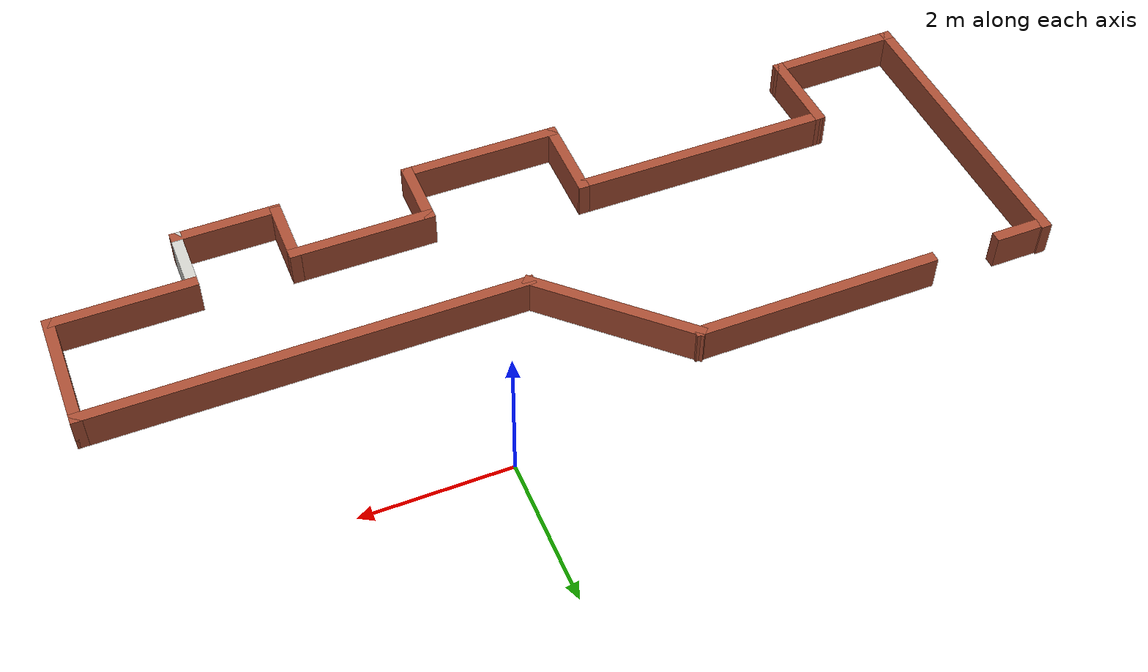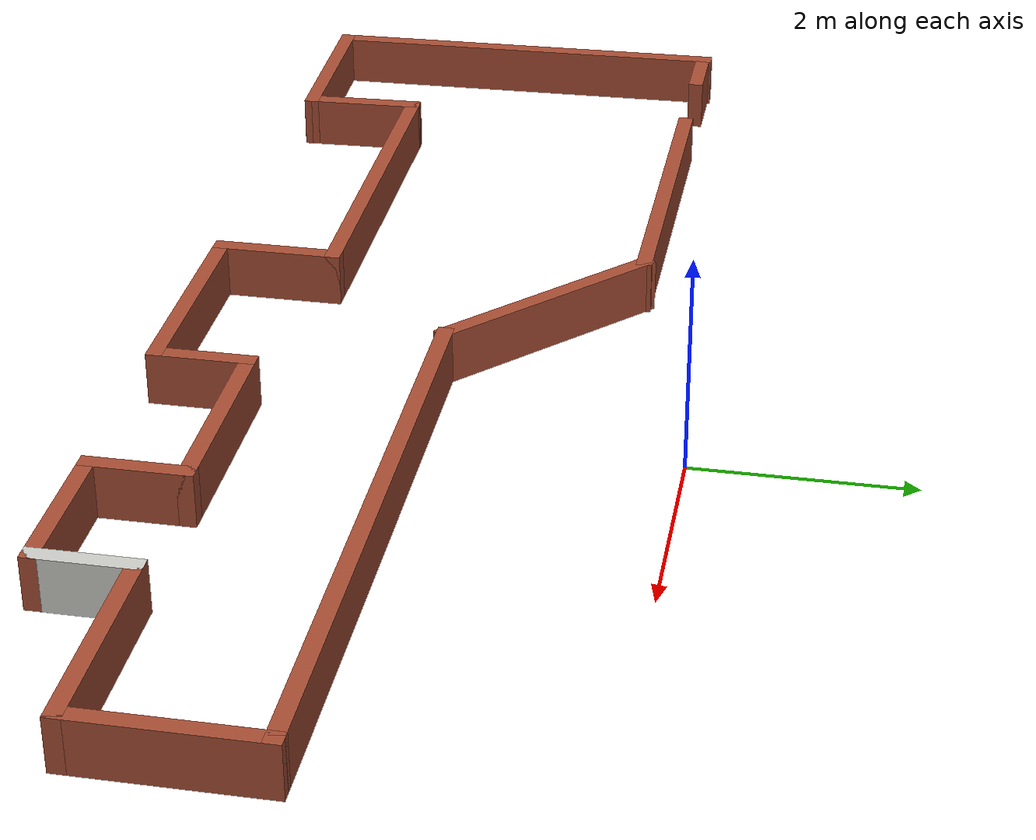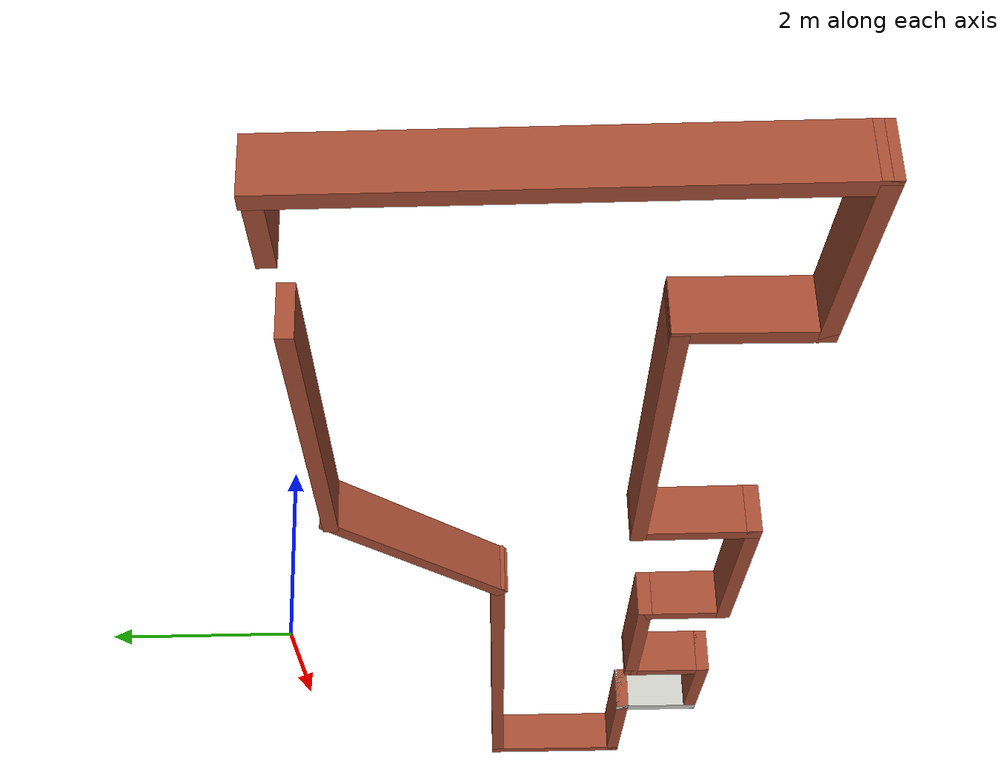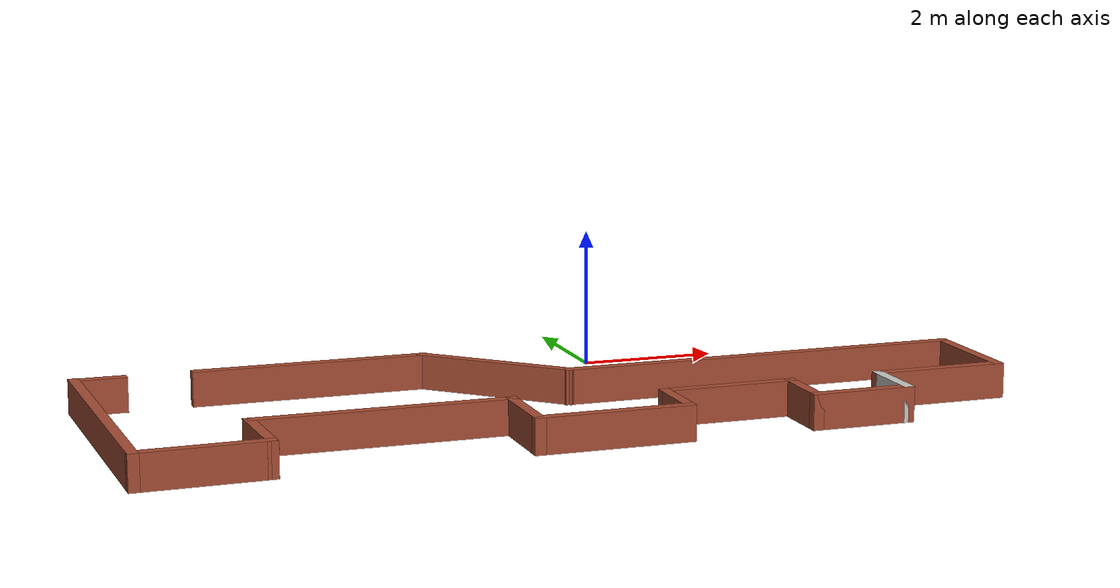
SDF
<?xml version='1.0'?>
<sdf version='1.7'>
  <model name='mybuilding'>
    <pose>-1.50073 -2.44259 0 0 -0 0</pose>
    <link name='Wall_0'>
      <pose>-3.68927 1.71259 0 0 -0 0</pose>
      <visual name='Wall_0_Visual_0'>
        <pose>-2.16475 0 0.25 0 -0 0</pose>
        <geometry>
          <box>
            <size>0.6605 0.15 0.5</size>
          </box>
        </geometry>
        <material>
          <script>
            <uri>file://media/materials/scripts/gazebo.material</uri>
            <name>Gazebo/Bricks</name>
          </script>
          <ambient>1 0.764706 0.305882 1</ambient>
        </material>
        <meta>
          <layer>0</layer>
        </meta>
      </visual>
      <collision name='Wall_0_Collision_0'>
        <geometry>
          <box>
            <size>0.6605 0.15 0.5</size>
          </box>
        </geometry>
        <pose>-2.16475 0 0.25 0 -0 0</pose>
      </collision>
      <visual name='Wall_0_Visual_1'>
        <pose>0.78025 0 0.25 0 -0 0</pose>
        <geometry>
          <box>
            <size>3.4295 0.15 0.5</size>
          </box>
        </geometry>
        <material>
          <script>
            <uri>file://media/materials/scripts/gazebo.material</uri>
            <name>Gazebo/Bricks</name>
          </script>
          <ambient>1 0.764706 0.305882 1</ambient>
        </material>
        <meta>
          <layer>0</layer>
        </meta>
      </visual>
      <collision name='Wall_0_Collision_1'>
        <geometry>
          <box>
            <size>3.4295 0.15 0.5</size>
          </box>
        </geometry>
        <pose>0.78025 0 0.25 0 -0 0</pose>
      </collision>
    </link>
    <link name='Wall_1'>
      <collision name='Wall_1_Collision'>
        <geometry>
          <box>
            <size>2.45586 0.15 0.5</size>
          </box>
        </geometry>
        <pose>0 0 0.25 0 -0 0</pose>
      </collision>
      <visual name='Wall_1_Visual'>
        <pose>0 0 0.25 0 -0 0</pose>
        <geometry>
          <box>
            <size>2.45586 0.15 0.5</size>
          </box>
        </geometry>
        <material>
          <script>
            <uri>file://media/materials/scripts/gazebo.material</uri>
            <name>Gazebo/Bricks</name>
          </script>
          <ambient>1 0.764706 0.305882 1</ambient>
        </material>
        <meta>
          <layer>0</layer>
        </meta>
      </visual>
      <pose>-0.434273 0.917593 0 0 -0 -0.760863</pose>
    </link>
    <link name='Wall_10'>
      <pose>0.150727 -2.32741 0 0 -0 3.14159</pose>
      <visual name='Wall_10_Visual_0'>
        <pose>0 0 0.25 0 -0 0</pose>
        <geometry>
          <box>
            <size>2.25 0.15 0.5</size>
          </box>
        </geometry>
        <material>
          <script>
            <uri>file://media/materials/scripts/gazebo.material</uri>
            <name>Gazebo/Bricks</name>
          </script>
          <ambient>1 0.764706 0.305882 1</ambient>
        </material>
        <meta>
          <layer>0</layer>
        </meta>
      </visual>
      <collision name='Wall_10_Collision_0'>
        <geometry>
          <box>
            <size>2.25 0.15 0.5</size>
          </box>
        </geometry>
        <pose>0 0 0.25 0 -0 0</pose>
      </collision>
    </link>
    <link name='Wall_11'>
      <collision name='Wall_11_Collision'>
        <geometry>
          <box>
            <size>1.25 0.15 0.5</size>
          </box>
        </geometry>
        <pose>0 0 0.25 0 -0 0</pose>
      </collision>
      <visual name='Wall_11_Visual'>
        <pose>0 0 0.25 0 -0 0</pose>
        <geometry>
          <box>
            <size>1.25 0.15 0.5</size>
          </box>
        </geometry>
        <material>
          <script>
            <uri>file://media/materials/scripts/gazebo.material</uri>
            <name>Gazebo/Bricks</name>
          </script>
          <ambient>1 0.764706 0.305882 1</ambient>
        </material>
        <meta>
          <layer>0</layer>
        </meta>
      </visual>
      <pose>-0.899273 -1.77741 0 0 -0 1.5708</pose>
    </link>
    <link name='Wall_12'>
      <collision name='Wall_12_Collision'>
        <geometry>
          <box>
            <size>3.67065 0.15 0.5</size>
          </box>
        </geometry>
        <pose>0 0 0.25 0 -0 0</pose>
      </collision>
      <visual name='Wall_12_Visual'>
        <pose>0 0 0.25 0 -0 0</pose>
        <geometry>
          <box>
            <size>3.67065 0.15 0.5</size>
          </box>
        </geometry>
        <material>
          <script>
            <uri>file://media/materials/scripts/gazebo.material</uri>
            <name>Gazebo/Bricks</name>
          </script>
          <ambient>1 0.764706 0.305882 1</ambient>
        </material>
        <meta>
          <layer>0</layer>
        </meta>
      </visual>
      <pose>-2.6596 -1.22741 0 0 -0 3.14159</pose>
    </link>
    <link name='Wall_13'>
      <collision name='Wall_13_Collision'>
        <geometry>
          <box>
            <size>1.25 0.15 0.5</size>
          </box>
        </geometry>
        <pose>0 0 0.25 0 -0 0</pose>
      </collision>
      <visual name='Wall_13_Visual'>
        <pose>0 0 0.25 0 -0 0</pose>
        <geometry>
          <box>
            <size>1.25 0.15 0.5</size>
          </box>
        </geometry>
        <material>
          <script>
            <uri>file://media/materials/scripts/gazebo.material</uri>
            <name>Gazebo/Bricks</name>
          </script>
          <ambient>1 0.764706 0.305882 1</ambient>
        </material>
        <meta>
          <layer>0</layer>
        </meta>
      </visual>
      <pose>-4.43976 -1.77741 0 0 -0 -1.53474</pose>
    </link>
    <link name='Wall_14'>
      <collision name='Wall_14_Collision'>
        <geometry>
          <box>
            <size>1.9 0.15 0.5</size>
          </box>
        </geometry>
        <pose>0 0 0.25 0 -0 0</pose>
      </collision>
      <visual name='Wall_14_Visual'>
        <pose>0 0 0.25 0 -0 0</pose>
        <geometry>
          <box>
            <size>1.9 0.15 0.5</size>
          </box>
        </geometry>
        <material>
          <script>
            <uri>file://media/materials/scripts/gazebo.material</uri>
            <name>Gazebo/Bricks</name>
          </script>
          <ambient>1 0.764706 0.305882 1</ambient>
        </material>
        <meta>
          <layer>0</layer>
        </meta>
      </visual>
      <pose>-5.29471 -2.34653 0 0 -0 -3.11973</pose>
    </link>
    <link name='Wall_15'>
      <collision name='Wall_15_Collision'>
        <geometry>
          <box>
            <size>4.25 0.15 0.5</size>
          </box>
        </geometry>
        <pose>0 0 0.25 0 -0 0</pose>
      </collision>
      <visual name='Wall_15_Visual'>
        <pose>0 0 0.25 0 -0 0</pose>
        <geometry>
          <box>
            <size>4.25 0.15 0.5</size>
          </box>
        </geometry>
        <material>
          <script>
            <uri>file://media/materials/scripts/gazebo.material</uri>
            <name>Gazebo/Bricks</name>
          </script>
          <ambient>1 0.764706 0.305882 1</ambient>
        </material>
        <meta>
          <layer>0</layer>
        </meta>
      </visual>
      <pose>-6.20939 -0.316535 0 0 -0 1.59026</pose>
    </link>
    <link name='Wall_2'>
      <collision name='Wall_2_Collision'>
        <geometry>
          <box>
            <size>6 0.15 0.5</size>
          </box>
        </geometry>
        <pose>0 0 0.25 0 -0 0</pose>
      </collision>
      <visual name='Wall_2_Visual'>
        <pose>0 0 0.25 0 -0 0</pose>
        <geometry>
          <box>
            <size>6 0.15 0.5</size>
          </box>
        </geometry>
        <material>
          <script>
            <uri>file://media/materials/scripts/gazebo.material</uri>
            <name>Gazebo/Bricks</name>
          </script>
          <ambient>1 0.764706 0.305882 1</ambient>
        </material>
        <meta>
          <layer>0</layer>
        </meta>
      </visual>
      <pose>3.32573 0.122593 0 0 -0 0</pose>
    </link>
    <link name='Wall_3'>
      <collision name='Wall_3_Collision'>
        <geometry>
          <box>
            <size>1.75 0.15 0.5</size>
          </box>
        </geometry>
        <pose>0 0 0.25 0 -0 0</pose>
      </collision>
      <visual name='Wall_3_Visual'>
        <pose>0 0 0.25 0 -0 0</pose>
        <geometry>
          <box>
            <size>1.75 0.15 0.5</size>
          </box>
        </geometry>
        <material>
          <script>
            <uri>file://media/materials/scripts/gazebo.material</uri>
            <name>Gazebo/Bricks</name>
          </script>
          <ambient>1 0.764706 0.305882 1</ambient>
        </material>
        <meta>
          <layer>0</layer>
        </meta>
      </visual>
      <pose>6.25073 -0.677407 0 0 -0 -1.5708</pose>
    </link>
    <link name='Wall_4'>
      <collision name='Wall_4_Collision'>
        <geometry>
          <box>
            <size>2 0.15 0.5</size>
          </box>
        </geometry>
        <pose>0 0 0.25 0 -0 0</pose>
      </collision>
      <visual name='Wall_4_Visual'>
        <pose>0 0 0.25 0 -0 0</pose>
        <geometry>
          <box>
            <size>2 0.15 0.5</size>
          </box>
        </geometry>
        <material>
          <script>
            <uri>file://media/materials/scripts/gazebo.material</uri>
            <name>Gazebo/Bricks</name>
          </script>
          <ambient>1 0.764706 0.305882 1</ambient>
        </material>
        <meta>
          <layer>0</layer>
        </meta>
      </visual>
      <pose>5.32573 -1.47741 0 0 -0 3.14159</pose>
    </link>
    <link name='Wall_5'>
      <collision name='Wall_5_Collision'>
        <geometry>
          <box>
            <size>1 0.15 0.5</size>
          </box>
        </geometry>
        <pose>0 0 0.25 0 -0 0</pose>
      </collision>
      <visual name='Wall_5_Visual'>
        <pose>0 0 0.25 0 -0 0</pose>
        <geometry>
          <box>
            <size>1 0.15 0.5</size>
          </box>
        </geometry>
        <material>
          <script>
            <uri>file://media/materials/scripts/gazebo.material</uri>
            <name>Gazebo/CeilingTiled</name>
          </script>
          <ambient>1 0.764706 0.305882 1</ambient>
        </material>
        <meta>
          <layer>0</layer>
        </meta>
      </visual>
      <pose>4.40073 -1.90241 0 0 -0 -1.5708</pose>
    </link>
    <link name='Wall_6'>
      <pose>3.72573 -2.32741 0 0 -0 3.14159</pose>
      <visual name='Wall_6_Visual_0'>
        <pose>0 0 0.25 0 -0 0</pose>
        <geometry>
          <box>
            <size>1.5 0.15 0.5</size>
          </box>
        </geometry>
        <material>
          <script>
            <uri>file://media/materials/scripts/gazebo.material</uri>
            <name>Gazebo/Bricks</name>
          </script>
          <ambient>1 0.764706 0.305882 1</ambient>
        </material>
        <meta>
          <layer>0</layer>
        </meta>
      </visual>
      <collision name='Wall_6_Collision_0'>
        <geometry>
          <box>
            <size>1.5 0.15 0.5</size>
          </box>
        </geometry>
        <pose>0 0 0.25 0 -0 0</pose>
      </collision>
    </link>
    <link name='Wall_7'>
      <collision name='Wall_7_Collision'>
        <geometry>
          <box>
            <size>1 0.15 0.5</size>
          </box>
        </geometry>
        <pose>0 0 0.25 0 -0 0</pose>
      </collision>
      <visual name='Wall_7_Visual'>
        <pose>0 0 0.25 0 -0 0</pose>
        <geometry>
          <box>
            <size>1 0.15 0.5</size>
          </box>
        </geometry>
        <material>
          <script>
            <uri>file://media/materials/scripts/gazebo.material</uri>
            <name>Gazebo/Bricks</name>
          </script>
          <ambient>1 0.764706 0.305882 1</ambient>
        </material>
        <meta>
          <layer>0</layer>
        </meta>
      </visual>
      <pose>3.05073 -1.90241 0 0 -0 1.5708</pose>
    </link>
    <link name='Wall_8'>
      <collision name='Wall_8_Collision'>
        <geometry>
          <box>
            <size>2 0.15 0.5</size>
          </box>
        </geometry>
        <pose>0 0 0.25 0 -0 0</pose>
      </collision>
      <visual name='Wall_8_Visual'>
        <pose>0 0 0.25 0 -0 0</pose>
        <geometry>
          <box>
            <size>2 0.15 0.5</size>
          </box>
        </geometry>
        <material>
          <script>
            <uri>file://media/materials/scripts/gazebo.material</uri>
            <name>Gazebo/Bricks</name>
          </script>
          <ambient>1 0.764706 0.305882 1</ambient>
        </material>
        <meta>
          <layer>0</layer>
        </meta>
      </visual>
      <pose>2.12573 -1.47741 0 0 -0 3.14159</pose>
    </link>
    <link name='Wall_9'>
      <collision name='Wall_9_Collision'>
        <geometry>
          <box>
            <size>1 0.15 0.5</size>
          </box>
        </geometry>
        <pose>0 0 0.25 0 -0 0</pose>
      </collision>
      <visual name='Wall_9_Visual'>
        <pose>0 0 0.25 0 -0 0</pose>
        <geometry>
          <box>
            <size>1 0.15 0.5</size>
          </box>
        </geometry>
        <material>
          <script>
            <uri>file://media/materials/scripts/gazebo.material</uri>
            <name>Gazebo/Bricks</name>
          </script>
          <ambient>1 0.764706 0.305882 1</ambient>
        </material>
        <meta>
          <layer>0</layer>
        </meta>
      </visual>
      <pose>1.20073 -1.90241 0 0 -0 -1.5708</pose>
    </link>
    <static>1</static>
  </model>
</sdf>
